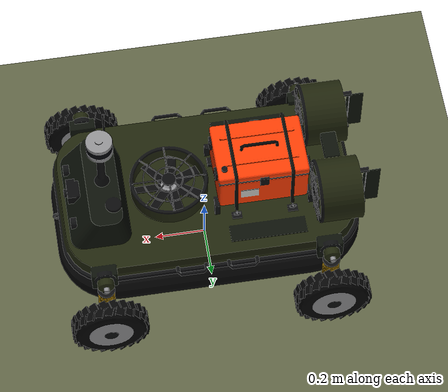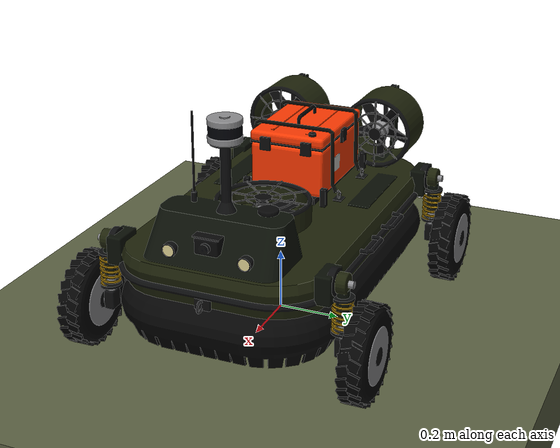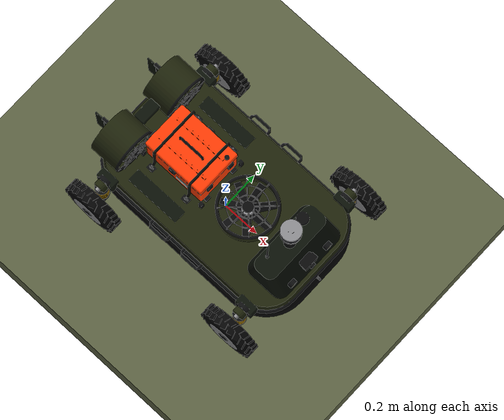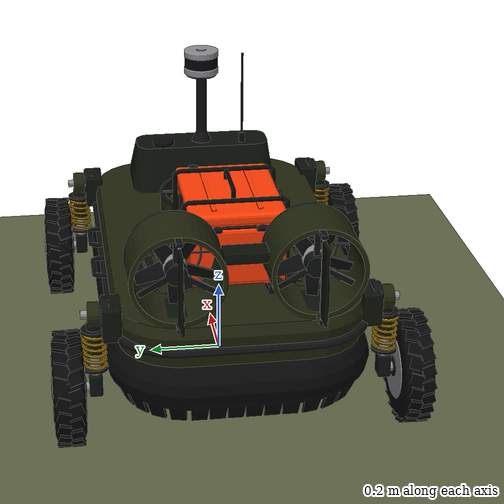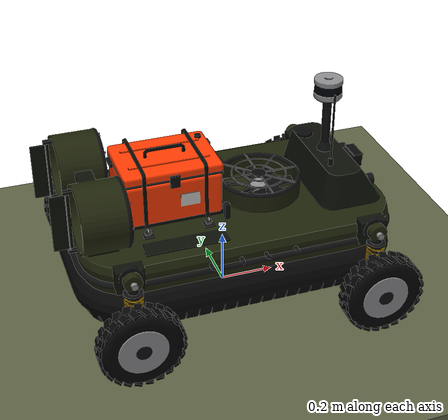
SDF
<?xml version="1.0"?>
<!-- GENERATED by hover_gazebo/scripts/gen_worlds.py -->
<sdf version="1.9">
  <world name="gap_hold_test">
    <physics name="1ms" type="dart">
      <max_step_size>0.001</max_step_size>
      <real_time_factor>1.0</real_time_factor>
      <dart><collision_detector>bullet</collision_detector></dart>
    </physics>
    <gravity>0 0 -9.81</gravity>
    <spherical_coordinates>
      <surface_model>EARTH_WGS84</surface_model>
      <latitude_deg>1.4466</latitude_deg><longitude_deg>103.7300</longitude_deg>
      <elevation>0</elevation><heading_deg>0</heading_deg>
    </spherical_coordinates>

    <plugin filename="gz-sim-physics-system" name="gz::sim::systems::Physics"/>
    <plugin filename="gz-sim-user-commands-system" name="gz::sim::systems::UserCommands"/>
    <plugin filename="gz-sim-scene-broadcaster-system" name="gz::sim::systems::SceneBroadcaster"/>
    <plugin filename="gz-sim-imu-system" name="gz::sim::systems::Imu"/>
    <plugin filename="gz-sim-navsat-system" name="gz::sim::systems::NavSat"/>
    <plugin filename="gz-sim-sensors-system" name="gz::sim::systems::Sensors">
      <render_engine>ogre2</render_engine>
    </plugin>
    <plugin filename="tidal_vehicle_plugins" name="hover::TerrainZones">
      <ground_height>0.0</ground_height>
    </plugin>
    <plugin filename="tidal_vehicle_plugins" name="hover::ScriptedCommands">
      <command><time>0.5</time><topic>/model/hovercraft/hover_enabled</topic><type>gz.msgs.Boolean</type><data>data: true</data></command>
      <command><time>2.0</time><topic>/model/hovercraft/legs_cmd</topic><type>gz.msgs.Double</type><data>data: 1.5708</data></command>
    </plugin>

    <scene><ambient>0.5 0.5 0.5 1</ambient><background>0.7 0.8 0.9 1</background><grid>false</grid></scene>
    <light type="directional" name="sun">
      <cast_shadows>true</cast_shadows><pose>0 0 10 0 0 0</pose>
      <diffuse>0.9 0.9 0.85 1</diffuse><specular>0.2 0.2 0.2 1</specular>
      <direction>-0.4 0.3 -0.9</direction>
    </light>

    <model name="ground">
      <static>true</static>
      <pose>0.0 0.0 -0.15 0 0 0</pose>
      <link name="link">
        <collision name="c">
          <geometry><box><size>40 40 0.3</size></box></geometry>
          <surface><friction><ode><mu>1.0</mu><mu2>1.0</mu2></ode></friction></surface>
        </collision>
        <visual name="v">
          <geometry><box><size>40 40 0.3</size></box></geometry>
          <material><ambient>0.36 0.38 0.26 1</ambient><diffuse>0.36 0.38 0.26 1</diffuse>
            <specular>0.05 0.05 0.05 1</specular></material>
        </visual>
      </link>
    </model>
    <include>
      <uri>model://hovercraft</uri>
      <name>hovercraft</name>
      <pose>0 0 0.002 0 0 0.0</pose>
    </include>
  </world>
</sdf>

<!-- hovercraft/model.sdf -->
<!-- GENERATED by tidal_vehicle_description/scripts/gen_description.py from link_frames.json. Do not edit by hand. -->
<!-- Model frame: ground plane under hull centre; vehicle standing on its wheels. -->
<!-- Total mass 25.00 kg; hull CoM offset 0.0891683 0 -0.03 (vehicle CoM over cushion centre). -->
<sdf version="1.9">
  <model name="hovercraft">
    <self_collide>false</self_collide>

    <link name="base_link">
      <pose>0 0 0.3 0 0 0</pose>
      <inertial>
        <pose>0.0891683 0 -0.03 0 0 0</pose>
        <mass>10.52</mass>
        <inertia><ixx>0.372057</ixx><ixy>0</ixy><ixz>0</ixz>
                 <iyy>1.09583</iyy><iyz>0</iyz><izz>1.39776</izz></inertia>
      </inertial>
      <visual name="visual">
        <geometry><mesh><uri>model://hovercraft/meshes/hull.dae</uri></mesh></geometry>
      </visual>
      <collision name="collision">
        <pose>0 0 -0.005 0 0 0</pose>
        <geometry><box><size>1.15 0.66 0.15</size></box></geometry>
        <surface><friction><ode><mu>0.3</mu><mu2>0.3</mu2></ode></friction></surface>
      </collision>
      <sensor name="imu" type="imu"><pose>0 0 0 0 0 0</pose><gz_frame_id>imu_link</gz_frame_id>
        <always_on>1</always_on><update_rate>50</update_rate><topic>__default__</topic>
      </sensor>
      <sensor name="navsat" type="navsat"><pose>0.37 0.12 0.216 0 0 0</pose><gz_frame_id>base_link</gz_frame_id>
        <always_on>1</always_on><update_rate>10</update_rate>
      </sensor>
      <sensor name="ranger_fl" type="gpu_lidar"><pose>0.42 0.2 -0.1 0 1.5708 0</pose><gz_frame_id>base_link</gz_frame_id>
        <always_on>1</always_on><update_rate>50</update_rate>
        <!-- 5 rays over +/-3 deg (a narrow ToF beam). A single-sample gpu_lidar
             returns wrong ranges in gz-sensors 8, so don't use samples = 1. -->
        <lidar><scan><horizontal><samples>5</samples><resolution>1</resolution>
          <min_angle>-0.05</min_angle><max_angle>0.05</max_angle></horizontal></scan>
          <range><min>0.01</min><max>2.0</max><resolution>0.001</resolution></range></lidar>
      </sensor>
      <sensor name="ranger_fr" type="gpu_lidar"><pose>0.42 -0.2 -0.1 0 1.5708 0</pose><gz_frame_id>base_link</gz_frame_id>
        <always_on>1</always_on><update_rate>50</update_rate>
        <!-- 5 rays over +/-3 deg (a narrow ToF beam). A single-sample gpu_lidar
             returns wrong ranges in gz-sensors 8, so don't use samples = 1. -->
        <lidar><scan><horizontal><samples>5</samples><resolution>1</resolution>
          <min_angle>-0.05</min_angle><max_angle>0.05</max_angle></horizontal></scan>
          <range><min>0.01</min><max>2.0</max><resolution>0.001</resolution></range></lidar>
      </sensor>
      <sensor name="ranger_rl" type="gpu_lidar"><pose>-0.42 0.2 -0.1 0 1.5708 0</pose><gz_frame_id>base_link</gz_frame_id>
        <always_on>1</always_on><update_rate>50</update_rate>
        <!-- 5 rays over +/-3 deg (a narrow ToF beam). A single-sample gpu_lidar
             returns wrong ranges in gz-sensors 8, so don't use samples = 1. -->
        <lidar><scan><horizontal><samples>5</samples><resolution>1</resolution>
          <min_angle>-0.05</min_angle><max_angle>0.05</max_angle></horizontal></scan>
          <range><min>0.01</min><max>2.0</max><resolution>0.001</resolution></range></lidar>
      </sensor>
      <sensor name="ranger_rr" type="gpu_lidar"><pose>-0.42 -0.2 -0.1 0 1.5708 0</pose><gz_frame_id>base_link</gz_frame_id>
        <always_on>1</always_on><update_rate>50</update_rate>
        <!-- 5 rays over +/-3 deg (a narrow ToF beam). A single-sample gpu_lidar
             returns wrong ranges in gz-sensors 8, so don't use samples = 1. -->
        <lidar><scan><horizontal><samples>5</samples><resolution>1</resolution>
          <min_angle>-0.05</min_angle><max_angle>0.05</max_angle></horizontal></scan>
          <range><min>0.01</min><max>2.0</max><resolution>0.001</resolution></range></lidar>
      </sensor>
    </link>
    <link name="skirt">
      <pose>0 0 0.19 0 0 0</pose>
      <inertial>
        <pose>0 0 0.0125 0 0 0</pose>
        <mass>1.5</mass>
        <inertia><ixx>0.0626281</ixx><ixy>0</ixy><ixz>0</ixz>
                 <iyy>0.181378</iyy><iyz>0</iyz><izz>0.24125</izz></inertia>
      </inertial>
      <visual name="visual">
        <geometry><mesh><uri>model://hovercraft/meshes/skirt.dae</uri></mesh></geometry>
      </visual>
      <collision name="collision">
        <pose>0 0 0.0125 0 0 0</pose>
        <geometry><box><size>1.2 0.7 0.105</size></box></geometry>
        <surface><friction><ode><mu>0.2</mu><mu2>0.2</mu2></ode></friction></surface>
      </collision>
    </link>
    <link name="lift_fan">
      <pose>0.14 0 0.39 0 0 0</pose>
      <inertial>
        <pose>0 0 0 0 0 0</pose>
        <mass>0.8</mass>
        <inertia><ixx>0.003705</ixx><ixy>0</ixy><ixz>0</ixz>
                 <iyy>0.003705</iyy><iyz>0</iyz><izz>0.00729</izz></inertia>
      </inertial>
      <visual name="visual">
        <geometry><mesh><uri>model://hovercraft/meshes/lift_fan.dae</uri></mesh></geometry>
      </visual>
    </link>
    <link name="thrust_fan_left">
      <pose>-0.475 0.175 0.5 0 0 0</pose>
      <inertial>
        <pose>0 0 0 0 0 0</pose>
        <mass>0.5</mass>
        <inertia><ixx>0.00275625</ixx><ixy>0</ixy><ixz>0</ixz>
                 <iyy>0.00141562</iyy><iyz>0</iyz><izz>0.00141562</izz></inertia>
      </inertial>
      <visual name="visual">
        <geometry><mesh><uri>model://hovercraft/meshes/thrust_fan_left.dae</uri></mesh></geometry>
      </visual>
    </link>
    <link name="thrust_fan_right">
      <pose>-0.475 -0.175 0.5 0 0 0</pose>
      <inertial>
        <pose>0 0 0 0 0 0</pose>
        <mass>0.5</mass>
        <inertia><ixx>0.00275625</ixx><ixy>0</ixy><ixz>0</ixz>
                 <iyy>0.00141562</iyy><iyz>0</iyz><izz>0.00141562</izz></inertia>
      </inertial>
      <visual name="visual">
        <geometry><mesh><uri>model://hovercraft/meshes/thrust_fan_right.dae</uri></mesh></geometry>
      </visual>
    </link>
    <link name="rudder_left">
      <pose>-0.6 0.175 0.5 0 0 0</pose>
      <inertial>
        <pose>-0.0215 0 0 0 0 0</pose>
        <mass>0.1</mass>
        <inertia><ixx>0.000368033</ixx><ixy>0</ixy><ixz>0</ixz>
                 <iyy>0.000404908</iyy><iyz>0</iyz><izz>3.79417e-05</izz></inertia>
      </inertial>
      <visual name="visual">
        <geometry><mesh><uri>model://hovercraft/meshes/rudder_left.dae</uri></mesh></geometry>
      </visual>
    </link>
    <link name="rudder_right">
      <pose>-0.6 -0.175 0.5 0 0 0</pose>
      <inertial>
        <pose>-0.0215 0 0 0 0 0</pose>
        <mass>0.1</mass>
        <inertia><ixx>0.000368033</ixx><ixy>0</ixy><ixz>0</ixz>
                 <iyy>0.000404908</iyy><iyz>0</iyz><izz>3.79417e-05</izz></inertia>
      </inertial>
      <visual name="visual">
        <geometry><mesh><uri>model://hovercraft/meshes/rudder_right.dae</uri></mesh></geometry>
      </visual>
    </link>
    <link name="wheel_leg_fl">
      <pose>0.44 0.38 0.36 0 0 0</pose>
      <inertial>
        <pose>0 0 -0.0675 0 0 0</pose>
        <mass>0.4</mass>
        <inertia><ixx>0.000336933</ixx><ixy>0</ixy><ixz>0</ixz>
                 <iyy>0.000336933</iyy><iyz>0</iyz><izz>7.22e-05</izz></inertia>
      </inertial>
      <visual name="visual">
        <geometry><mesh><uri>model://hovercraft/meshes/wheel_leg_fl.dae</uri></mesh></geometry>
      </visual>
      <collision name="collision">
        <pose>0 0 -0.0675 0 0 0</pose>
        <geometry><cylinder><radius>0.019</radius><length>0.095</length></cylinder></geometry>
        <surface><friction><ode><mu>0.5</mu><mu2>0.5</mu2></ode></friction></surface>
      </collision>
    </link>
    <link name="wheel_leg_fr">
      <pose>0.44 -0.38 0.36 0 0 0</pose>
      <inertial>
        <pose>0 0 -0.0675 0 0 0</pose>
        <mass>0.4</mass>
        <inertia><ixx>0.000336933</ixx><ixy>0</ixy><ixz>0</ixz>
                 <iyy>0.000336933</iyy><iyz>0</iyz><izz>7.22e-05</izz></inertia>
      </inertial>
      <visual name="visual">
        <geometry><mesh><uri>model://hovercraft/meshes/wheel_leg_fr.dae</uri></mesh></geometry>
      </visual>
      <collision name="collision">
        <pose>0 0 -0.0675 0 0 0</pose>
        <geometry><cylinder><radius>0.019</radius><length>0.095</length></cylinder></geometry>
        <surface><friction><ode><mu>0.5</mu><mu2>0.5</mu2></ode></friction></surface>
      </collision>
    </link>
    <link name="wheel_leg_rl">
      <pose>-0.44 0.38 0.36 0 0 0</pose>
      <inertial>
        <pose>0 0 -0.0675 0 0 0</pose>
        <mass>0.4</mass>
        <inertia><ixx>0.000336933</ixx><ixy>0</ixy><ixz>0</ixz>
                 <iyy>0.000336933</iyy><iyz>0</iyz><izz>7.22e-05</izz></inertia>
      </inertial>
      <visual name="visual">
        <geometry><mesh><uri>model://hovercraft/meshes/wheel_leg_rl.dae</uri></mesh></geometry>
      </visual>
      <collision name="collision">
        <pose>0 0 -0.0675 0 0 0</pose>
        <geometry><cylinder><radius>0.019</radius><length>0.095</length></cylinder></geometry>
        <surface><friction><ode><mu>0.5</mu><mu2>0.5</mu2></ode></friction></surface>
      </collision>
    </link>
    <link name="wheel_leg_rr">
      <pose>-0.44 -0.38 0.36 0 0 0</pose>
      <inertial>
        <pose>0 0 -0.0675 0 0 0</pose>
        <mass>0.4</mass>
        <inertia><ixx>0.000336933</ixx><ixy>0</ixy><ixz>0</ixz>
                 <iyy>0.000336933</iyy><iyz>0</iyz><izz>7.22e-05</izz></inertia>
      </inertial>
      <visual name="visual">
        <geometry><mesh><uri>model://hovercraft/meshes/wheel_leg_rr.dae</uri></mesh></geometry>
      </visual>
      <collision name="collision">
        <pose>0 0 -0.0675 0 0 0</pose>
        <geometry><cylinder><radius>0.019</radius><length>0.095</length></cylinder></geometry>
        <surface><friction><ode><mu>0.5</mu><mu2>0.5</mu2></ode></friction></surface>
      </collision>
    </link>
    <link name="wheel_shock_fl">
      <pose>0.44 0.38 0.15 0 0 0</pose>
      <inertial>
        <pose>0 0 0.08 0 0 0</pose>
        <mass>0.2</mass>
        <inertia><ixx>0.000436467</ixx><ixy>0</ixy><ixz>0</ixz>
                 <iyy>0.000436467</iyy><iyz>0</iyz><izz>1.96e-05</izz></inertia>
      </inertial>
      <visual name="visual">
        <geometry><mesh><uri>model://hovercraft/meshes/wheel_shock_fl.dae</uri></mesh></geometry>
      </visual>
      <collision name="collision">
        <pose>0 0 0.08 0 0 0</pose>
        <geometry><cylinder><radius>0.014</radius><length>0.16</length></cylinder></geometry>
        <surface><friction><ode><mu>0.5</mu><mu2>0.5</mu2></ode></friction></surface>
      </collision>
    </link>
    <link name="wheel_shock_fr">
      <pose>0.44 -0.38 0.15 0 0 0</pose>
      <inertial>
        <pose>0 0 0.08 0 0 0</pose>
        <mass>0.2</mass>
        <inertia><ixx>0.000436467</ixx><ixy>0</ixy><ixz>0</ixz>
                 <iyy>0.000436467</iyy><iyz>0</iyz><izz>1.96e-05</izz></inertia>
      </inertial>
      <visual name="visual">
        <geometry><mesh><uri>model://hovercraft/meshes/wheel_shock_fr.dae</uri></mesh></geometry>
      </visual>
      <collision name="collision">
        <pose>0 0 0.08 0 0 0</pose>
        <geometry><cylinder><radius>0.014</radius><length>0.16</length></cylinder></geometry>
        <surface><friction><ode><mu>0.5</mu><mu2>0.5</mu2></ode></friction></surface>
      </collision>
    </link>
    <link name="wheel_shock_rl">
      <pose>-0.44 0.38 0.15 0 0 0</pose>
      <inertial>
        <pose>0 0 0.08 0 0 0</pose>
        <mass>0.2</mass>
        <inertia><ixx>0.000436467</ixx><ixy>0</ixy><ixz>0</ixz>
                 <iyy>0.000436467</iyy><iyz>0</iyz><izz>1.96e-05</izz></inertia>
      </inertial>
      <visual name="visual">
        <geometry><mesh><uri>model://hovercraft/meshes/wheel_shock_rl.dae</uri></mesh></geometry>
      </visual>
      <collision name="collision">
        <pose>0 0 0.08 0 0 0</pose>
        <geometry><cylinder><radius>0.014</radius><length>0.16</length></cylinder></geometry>
        <surface><friction><ode><mu>0.5</mu><mu2>0.5</mu2></ode></friction></surface>
      </collision>
    </link>
    <link name="wheel_shock_rr">
      <pose>-0.44 -0.38 0.15 0 0 0</pose>
      <inertial>
        <pose>0 0 0.08 0 0 0</pose>
        <mass>0.2</mass>
        <inertia><ixx>0.000436467</ixx><ixy>0</ixy><ixz>0</ixz>
                 <iyy>0.000436467</iyy><iyz>0</iyz><izz>1.96e-05</izz></inertia>
      </inertial>
      <visual name="visual">
        <geometry><mesh><uri>model://hovercraft/meshes/wheel_shock_rr.dae</uri></mesh></geometry>
      </visual>
      <collision name="collision">
        <pose>0 0 0.08 0 0 0</pose>
        <geometry><cylinder><radius>0.014</radius><length>0.16</length></cylinder></geometry>
        <surface><friction><ode><mu>0.5</mu><mu2>0.5</mu2></ode></friction></surface>
      </collision>
    </link>
    <link name="wheel_fl">
      <pose>0.44 0.45 0.15 0 0 0</pose>
      <inertial>
        <pose>0 0 0 0 0 0</pose>
        <mass>0.9</mass>
        <inertia><ixx>0.0055425</ixx><ixy>0</ixy><ixz>0</ixz>
                 <iyy>0.010125</iyy><iyz>0</iyz><izz>0.0055425</izz></inertia>
      </inertial>
      <visual name="visual">
        <geometry><mesh><uri>model://hovercraft/meshes/wheel_fl.dae</uri></mesh></geometry>
      </visual>
      <collision name="collision">
        <pose>0 0 0 1.5708 0 0</pose>
        <geometry><cylinder><radius>0.15</radius><length>0.08</length></cylinder></geometry>
        <surface><friction><ode><mu>1.0</mu><mu2>1.0</mu2></ode></friction></surface>
      </collision>
    </link>
    <link name="wheel_fr">
      <pose>0.44 -0.45 0.15 0 0 0</pose>
      <inertial>
        <pose>0 0 0 0 0 0</pose>
        <mass>0.9</mass>
        <inertia><ixx>0.0055425</ixx><ixy>0</ixy><ixz>0</ixz>
                 <iyy>0.010125</iyy><iyz>0</iyz><izz>0.0055425</izz></inertia>
      </inertial>
      <visual name="visual">
        <geometry><mesh><uri>model://hovercraft/meshes/wheel_fr.dae</uri></mesh></geometry>
      </visual>
      <collision name="collision">
        <pose>0 0 0 1.5708 0 0</pose>
        <geometry><cylinder><radius>0.15</radius><length>0.08</length></cylinder></geometry>
        <surface><friction><ode><mu>1.0</mu><mu2>1.0</mu2></ode></friction></surface>
      </collision>
    </link>
    <link name="wheel_rl">
      <pose>-0.44 0.45 0.15 0 0 0</pose>
      <inertial>
        <pose>0 0 0 0 0 0</pose>
        <mass>0.9</mass>
        <inertia><ixx>0.0055425</ixx><ixy>0</ixy><ixz>0</ixz>
                 <iyy>0.010125</iyy><iyz>0</iyz><izz>0.0055425</izz></inertia>
      </inertial>
      <visual name="visual">
        <geometry><mesh><uri>model://hovercraft/meshes/wheel_rl.dae</uri></mesh></geometry>
      </visual>
      <collision name="collision">
        <pose>0 0 0 1.5708 0 0</pose>
        <geometry><cylinder><radius>0.15</radius><length>0.08</length></cylinder></geometry>
        <surface><friction><ode><mu>1.0</mu><mu2>1.0</mu2></ode></friction></surface>
      </collision>
    </link>
    <link name="wheel_rr">
      <pose>-0.44 -0.45 0.15 0 0 0</pose>
      <inertial>
        <pose>0 0 0 0 0 0</pose>
        <mass>0.9</mass>
        <inertia><ixx>0.0055425</ixx><ixy>0</ixy><ixz>0</ixz>
                 <iyy>0.010125</iyy><iyz>0</iyz><izz>0.0055425</izz></inertia>
      </inertial>
      <visual name="visual">
        <geometry><mesh><uri>model://hovercraft/meshes/wheel_rr.dae</uri></mesh></geometry>
      </visual>
      <collision name="collision">
        <pose>0 0 0 1.5708 0 0</pose>
        <geometry><cylinder><radius>0.15</radius><length>0.08</length></cylinder></geometry>
        <surface><friction><ode><mu>1.0</mu><mu2>1.0</mu2></ode></friction></surface>
      </collision>
    </link>
    <link name="payload_box">
      <pose>-0.215 0 0.39 0 0 0</pose>
      <inertial>
        <pose>0 0 0.1 0 0 0</pose>
        <mass>4.0</mass>
        <inertia><ixx>0.0341667</ixx><ixy>0</ixy><ixz>0</ixz>
                 <iyy>0.0541667</iyy><iyz>0</iyz><izz>0.0616667</izz></inertia>
      </inertial>
      <visual name="visual">
        <geometry><mesh><uri>model://hovercraft/meshes/payload_box.dae</uri></mesh></geometry>
      </visual>
      <collision name="collision">
        <pose>0 0 0.1 0 0 0</pose>
        <geometry><box><size>0.35 0.25 0.2</size></box></geometry>
        <surface><friction><ode><mu>0.5</mu><mu2>0.5</mu2></ode></friction></surface>
      </collision>
    </link>
    <link name="lidar_link">
      <pose>0.4 0 0.75 0 0 0</pose>
      <inertial>
        <pose>0 0 0 0 0 0</pose>
        <mass>0.83</mass>
        <inertia><ixx>0.00090592</ixx><ixy>0</ixy><ixz>0</ixz>
                 <iyy>0.00090592</iyy><iyz>0</iyz><izz>0.00110068</izz></inertia>
      </inertial>
      <visual name="visual">
        <geometry><mesh><uri>model://hovercraft/meshes/lidar.dae</uri></mesh></geometry>
      </visual>
      <collision name="collision">
        <pose>0 0 0 0 0 0</pose>
        <geometry><cylinder><radius>0.0515</radius><length>0.0717</length></cylinder></geometry>
        <surface><friction><ode><mu>0.5</mu><mu2>0.5</mu2></ode></friction></surface>
      </collision>
      <sensor name="lidar_3d" type="gpu_lidar"><pose>0 0 0 0 0 0</pose><gz_frame_id>lidar_link</gz_frame_id>
        <always_on>1</always_on><update_rate>10</update_rate><visualize>1</visualize>
        <lidar>
          <scan>
            <horizontal><samples>900</samples><resolution>1</resolution>
              <min_angle>-3.14159</min_angle><max_angle>3.14159</max_angle></horizontal>
            <vertical><samples>16</samples><resolution>1</resolution>
              <min_angle>-0.26180</min_angle>
              <max_angle>0.26180</max_angle></vertical>
          </scan>
          <range><min>0.3</min><max>30.0</max><resolution>0.01</resolution></range>
          <noise><type>gaussian</type><mean>0</mean><stddev>0.01</stddev></noise>
        </lidar>
      </sensor>
    </link>
    <link name="camera_link">
      <pose>0.552 0 0.44 0 0 0</pose>
      <inertial>
        <pose>-0.037 0 0 0 0 0</pose>
        <mass>0.15</mass>
        <inertia><ixx>0.000101562</ixx><ixy>0</ixy><ixz>0</ixz>
                 <iyy>6.25e-05</iyy><iyz>0</iyz><izz>0.000101562</izz></inertia>
      </inertial>
      <visual name="visual">
        <geometry><mesh><uri>model://hovercraft/meshes/camera.dae</uri></mesh></geometry>
      </visual>
      <collision name="collision">
        <pose>-0.037 0 0 0 0 0</pose>
        <geometry><box><size>0.05 0.075 0.05</size></box></geometry>
        <surface><friction><ode><mu>0.5</mu><mu2>0.5</mu2></ode></friction></surface>
      </collision>
      <sensor name="front_camera" type="camera"><pose>0 0 0 0 0 0</pose><gz_frame_id>camera_link</gz_frame_id>
        <always_on>1</always_on><update_rate>15</update_rate>
        <camera><horizontal_fov>1.40</horizontal_fov>
          <image><width>640</width><height>480</height><format>R8G8B8</format></image>
          <clip><near>0.05</near><far>60</far></clip></camera>
      </sensor>
    </link>

    <joint name="skirt_joint" type="fixed">
      <parent>base_link</parent>
      <child>skirt</child>
    </joint>
    <joint name="lift_fan_joint" type="revolute">
      <parent>base_link</parent>
      <child>lift_fan</child>
      <axis>
        <xyz>0 0 1</xyz>
        <limit><lower>-1e16</lower><upper>1e16</upper><effort>5</effort></limit>
        <dynamics><damping>0.01</damping></dynamics>
      </axis>
    </joint>
    <joint name="thrust_fan_left_joint" type="revolute">
      <parent>base_link</parent>
      <child>thrust_fan_left</child>
      <axis>
        <xyz>1 0 0</xyz>
        <limit><lower>-1e16</lower><upper>1e16</upper><effort>5</effort></limit>
        <dynamics><damping>0.01</damping></dynamics>
      </axis>
    </joint>
    <joint name="thrust_fan_right_joint" type="revolute">
      <parent>base_link</parent>
      <child>thrust_fan_right</child>
      <axis>
        <xyz>1 0 0</xyz>
        <limit><lower>-1e16</lower><upper>1e16</upper><effort>5</effort></limit>
        <dynamics><damping>0.01</damping></dynamics>
      </axis>
    </joint>
    <joint name="rudder_left_joint" type="revolute">
      <parent>base_link</parent>
      <child>rudder_left</child>
      <axis>
        <xyz>0 0 1</xyz>
        <limit><lower>-0.5236</lower><upper>0.5236</upper><effort>5</effort></limit>
        <dynamics><damping>0.5</damping></dynamics>
      </axis>
    </joint>
    <joint name="rudder_right_joint" type="revolute">
      <parent>base_link</parent>
      <child>rudder_right</child>
      <axis>
        <xyz>0 0 1</xyz>
        <limit><lower>-0.5236</lower><upper>0.5236</upper><effort>5</effort></limit>
        <dynamics><damping>0.5</damping></dynamics>
      </axis>
    </joint>
    <joint name="wheel_leg_fl_joint" type="revolute">
      <parent>base_link</parent>
      <child>wheel_leg_fl</child>
      <axis>
        <xyz>0 1 0</xyz>
        <limit><lower>0.0</lower><upper>1.5708</upper><effort>80</effort></limit>
        <dynamics><damping>0.5</damping></dynamics>
      </axis>
    </joint>
    <joint name="wheel_leg_fr_joint" type="revolute">
      <parent>base_link</parent>
      <child>wheel_leg_fr</child>
      <axis>
        <xyz>0 1 0</xyz>
        <limit><lower>0.0</lower><upper>1.5708</upper><effort>80</effort></limit>
        <dynamics><damping>0.5</damping></dynamics>
      </axis>
    </joint>
    <joint name="wheel_leg_rl_joint" type="revolute">
      <parent>base_link</parent>
      <child>wheel_leg_rl</child>
      <axis>
        <xyz>0 -1 0</xyz>
        <limit><lower>0.0</lower><upper>1.5708</upper><effort>80</effort></limit>
        <dynamics><damping>0.5</damping></dynamics>
      </axis>
    </joint>
    <joint name="wheel_leg_rr_joint" type="revolute">
      <parent>base_link</parent>
      <child>wheel_leg_rr</child>
      <axis>
        <xyz>0 -1 0</xyz>
        <limit><lower>0.0</lower><upper>1.5708</upper><effort>80</effort></limit>
        <dynamics><damping>0.5</damping></dynamics>
      </axis>
    </joint>
    <joint name="wheel_shock_fl_joint" type="prismatic">
      <parent>wheel_leg_fl</parent>
      <child>wheel_shock_fl</child>
      <axis>
        <xyz>0 0 1</xyz>
        <limit><lower>-0.03</lower><upper>0.05</upper><effort>600</effort></limit>
        <dynamics><damping>0.5</damping></dynamics>
      </axis>
    </joint>
    <joint name="wheel_shock_fr_joint" type="prismatic">
      <parent>wheel_leg_fr</parent>
      <child>wheel_shock_fr</child>
      <axis>
        <xyz>0 0 1</xyz>
        <limit><lower>-0.03</lower><upper>0.05</upper><effort>600</effort></limit>
        <dynamics><damping>0.5</damping></dynamics>
      </axis>
    </joint>
    <joint name="wheel_shock_rl_joint" type="prismatic">
      <parent>wheel_leg_rl</parent>
      <child>wheel_shock_rl</child>
      <axis>
        <xyz>0 0 1</xyz>
        <limit><lower>-0.03</lower><upper>0.05</upper><effort>600</effort></limit>
        <dynamics><damping>0.5</damping></dynamics>
      </axis>
    </joint>
    <joint name="wheel_shock_rr_joint" type="prismatic">
      <parent>wheel_leg_rr</parent>
      <child>wheel_shock_rr</child>
      <axis>
        <xyz>0 0 1</xyz>
        <limit><lower>-0.03</lower><upper>0.05</upper><effort>600</effort></limit>
        <dynamics><damping>0.5</damping></dynamics>
      </axis>
    </joint>
    <joint name="wheel_fl_joint" type="revolute">
      <parent>wheel_shock_fl</parent>
      <child>wheel_fl</child>
      <axis>
        <xyz>0 1 0</xyz>
        <limit><lower>-1e16</lower><upper>1e16</upper><effort>15</effort></limit>
        <dynamics><damping>0.01</damping></dynamics>
      </axis>
    </joint>
    <joint name="wheel_fr_joint" type="revolute">
      <parent>wheel_shock_fr</parent>
      <child>wheel_fr</child>
      <axis>
        <xyz>0 1 0</xyz>
        <limit><lower>-1e16</lower><upper>1e16</upper><effort>15</effort></limit>
        <dynamics><damping>0.01</damping></dynamics>
      </axis>
    </joint>
    <joint name="wheel_rl_joint" type="revolute">
      <parent>wheel_shock_rl</parent>
      <child>wheel_rl</child>
      <axis>
        <xyz>0 1 0</xyz>
        <limit><lower>-1e16</lower><upper>1e16</upper><effort>15</effort></limit>
        <dynamics><damping>0.01</damping></dynamics>
      </axis>
    </joint>
    <joint name="wheel_rr_joint" type="revolute">
      <parent>wheel_shock_rr</parent>
      <child>wheel_rr</child>
      <axis>
        <xyz>0 1 0</xyz>
        <limit><lower>-1e16</lower><upper>1e16</upper><effort>15</effort></limit>
        <dynamics><damping>0.01</damping></dynamics>
      </axis>
    </joint>
    <joint name="payload_box_joint" type="fixed">
      <parent>base_link</parent>
      <child>payload_box</child>
    </joint>
    <joint name="lidar_joint" type="fixed">
      <parent>base_link</parent>
      <child>lidar_link</child>
    </joint>
    <joint name="camera_joint" type="fixed">
      <parent>base_link</parent>
      <child>camera_link</child>
    </joint>

    <!-- Air cushion + glide drag + fan thrust + mud resistance (tidal_vehicle_simulation) -->
    <plugin filename="tidal_vehicle_plugins" name="hover::AirCushion">
      <link_name>base_link</link_name>
      <corner>0.420 0.200 -0.200</corner><corner>0.420 -0.200 -0.200</corner><corner>-0.420 0.200 -0.200</corner><corner>-0.420 -0.200 -0.200</corner>
      <target_gap>0.04</target_gap>
      <stiffness>1500</stiffness>
      <damping>130</damping>
      <max_force_factor>2.0</max_force_factor>
      <spinup_time>1.5</spinup_time>
      <glide_linear_drag>5</glide_linear_drag>
      <glide_quadratic_drag>6</glide_quadratic_drag>
      <glide_yaw_drag>4</glide_yaw_drag>
      <glide_lateral_factor>3</glide_lateral_factor>
      <max_thrust>30</max_thrust>
      <thrust_point_left>-0.475 0.175 0.2</thrust_point_left>
      <thrust_point_right>-0.475 -0.175 0.2</thrust_point_right>
      <mud_viscous_drag>150</mud_viscous_drag>
      <mud_rolling_resistance>0.25</mud_rolling_resistance>
      <vent_length>0.05</vent_length>
      <rudder_wash_coeff>0.55</rudder_wash_coeff>
      <heading_kp>40</heading_kp><heading_kd>25</heading_kd>
      <speed_kp>40</speed_kp><speed_ki>10</speed_ki><yaw_rate_kp>30</yaw_rate_kp>
      <cmd_timeout>0.5</cmd_timeout>
      <use_raycast>true</use_raycast>
      <log_file>/tmp/hover_{model}.csv</log_file>
      <log_joint>wheel_leg_fl_joint</log_joint><log_joint>wheel_leg_fr_joint</log_joint><log_joint>wheel_leg_rl_joint</log_joint><log_joint>wheel_leg_rr_joint</log_joint><log_joint>wheel_shock_fl_joint</log_joint><log_joint>wheel_shock_fr_joint</log_joint><log_joint>wheel_shock_rl_joint</log_joint><log_joint>wheel_shock_rr_joint</log_joint><log_joint>wheel_fl_joint</log_joint><log_joint>wheel_fr_joint</log_joint><log_joint>wheel_rl_joint</log_joint><log_joint>wheel_rr_joint</log_joint>
    </plugin>

    <plugin filename="gz-sim-diff-drive-system" name="gz::sim::systems::DiffDrive">
      <odom_topic>internal/wheel_odometry</odom_topic><tf_topic>internal/wheel_tf</tf_topic>
      <left_joint>wheel_fl_joint</left_joint><left_joint>wheel_rl_joint</left_joint>
      <right_joint>wheel_fr_joint</right_joint><right_joint>wheel_rr_joint</right_joint>
      <wheel_separation>0.900</wheel_separation>
      <wheel_radius>0.150</wheel_radius>
      <max_linear_velocity>2.0</max_linear_velocity>
      <max_angular_velocity>2.0</max_angular_velocity>
      <odom_publish_frequency>20</odom_publish_frequency>
    </plugin>

    <plugin filename="gz-sim-joint-position-controller-system" name="gz::sim::systems::JointPositionController">
      <joint_name>wheel_leg_fl_joint</joint_name>
      <sub_topic>legs_cmd</sub_topic>
      <use_velocity_commands>true</use_velocity_commands>
      <p_gain>4.0</p_gain><i_gain>0</i_gain><d_gain>0</d_gain>
      <cmd_max>1.2</cmd_max><cmd_min>-1.2</cmd_min>
      <initial_position>0</initial_position>
    </plugin>
    <plugin filename="gz-sim-joint-position-controller-system" name="gz::sim::systems::JointPositionController">
      <joint_name>wheel_leg_fr_joint</joint_name>
      <sub_topic>legs_cmd</sub_topic>
      <use_velocity_commands>true</use_velocity_commands>
      <p_gain>4.0</p_gain><i_gain>0</i_gain><d_gain>0</d_gain>
      <cmd_max>1.2</cmd_max><cmd_min>-1.2</cmd_min>
      <initial_position>0</initial_position>
    </plugin>
    <plugin filename="gz-sim-joint-position-controller-system" name="gz::sim::systems::JointPositionController">
      <joint_name>wheel_leg_rl_joint</joint_name>
      <sub_topic>legs_cmd</sub_topic>
      <use_velocity_commands>true</use_velocity_commands>
      <p_gain>4.0</p_gain><i_gain>0</i_gain><d_gain>0</d_gain>
      <cmd_max>1.2</cmd_max><cmd_min>-1.2</cmd_min>
      <initial_position>0</initial_position>
    </plugin>
    <plugin filename="gz-sim-joint-position-controller-system" name="gz::sim::systems::JointPositionController">
      <joint_name>wheel_leg_rr_joint</joint_name>
      <sub_topic>legs_cmd</sub_topic>
      <use_velocity_commands>true</use_velocity_commands>
      <p_gain>4.0</p_gain><i_gain>0</i_gain><d_gain>0</d_gain>
      <cmd_max>1.2</cmd_max><cmd_min>-1.2</cmd_min>
      <initial_position>0</initial_position>
    </plugin>
    <!-- Suspension spring-damper (wheel_shock_fl): k = 1700.0 N/m, c = 75.0 N s/m -->
    <plugin filename="gz-sim-joint-position-controller-system" name="gz::sim::systems::JointPositionController">
      <joint_name>wheel_shock_fl_joint</joint_name>
      <p_gain>1700.0</p_gain><i_gain>0</i_gain><d_gain>75.0</d_gain>
      <cmd_max>600</cmd_max><cmd_min>-600</cmd_min>
      <initial_position>-0.03</initial_position>
    </plugin>
    <!-- Suspension spring-damper (wheel_shock_fr): k = 1700.0 N/m, c = 75.0 N s/m -->
    <plugin filename="gz-sim-joint-position-controller-system" name="gz::sim::systems::JointPositionController">
      <joint_name>wheel_shock_fr_joint</joint_name>
      <p_gain>1700.0</p_gain><i_gain>0</i_gain><d_gain>75.0</d_gain>
      <cmd_max>600</cmd_max><cmd_min>-600</cmd_min>
      <initial_position>-0.03</initial_position>
    </plugin>
    <!-- Suspension spring-damper (wheel_shock_rl): k = 1700.0 N/m, c = 75.0 N s/m -->
    <plugin filename="gz-sim-joint-position-controller-system" name="gz::sim::systems::JointPositionController">
      <joint_name>wheel_shock_rl_joint</joint_name>
      <p_gain>1700.0</p_gain><i_gain>0</i_gain><d_gain>75.0</d_gain>
      <cmd_max>600</cmd_max><cmd_min>-600</cmd_min>
      <initial_position>-0.03</initial_position>
    </plugin>
    <!-- Suspension spring-damper (wheel_shock_rr): k = 1700.0 N/m, c = 75.0 N s/m -->
    <plugin filename="gz-sim-joint-position-controller-system" name="gz::sim::systems::JointPositionController">
      <joint_name>wheel_shock_rr_joint</joint_name>
      <p_gain>1700.0</p_gain><i_gain>0</i_gain><d_gain>75.0</d_gain>
      <cmd_max>600</cmd_max><cmd_min>-600</cmd_min>
      <initial_position>-0.03</initial_position>
    </plugin>
    <plugin filename="gz-sim-joint-position-controller-system" name="gz::sim::systems::JointPositionController">
      <joint_name>rudder_left_joint</joint_name><sub_topic>rudder_left_cmd</sub_topic>
      <p_gain>2</p_gain><d_gain>0.05</d_gain>
      <cmd_max>2</cmd_max><cmd_min>-2</cmd_min>
    </plugin>
    <plugin filename="gz-sim-joint-position-controller-system" name="gz::sim::systems::JointPositionController">
      <joint_name>rudder_right_joint</joint_name><sub_topic>rudder_right_cmd</sub_topic>
      <p_gain>2</p_gain><d_gain>0.05</d_gain>
      <cmd_max>2</cmd_max><cmd_min>-2</cmd_min>
    </plugin>
    <plugin filename="gz-sim-joint-state-publisher-system" name="gz::sim::systems::JointStatePublisher"/>

    <!-- /odom + TF (odom frame -> base_link). Ground-truth pose, valid in BOTH modes
         (wheel odometry is meaningless while hovering). Idealised: stated in docs. -->
    <plugin filename="gz-sim-odometry-publisher-system" name="gz::sim::systems::OdometryPublisher">
      <odom_frame>map</odom_frame>
      <robot_base_frame>base_link</robot_base_frame>
      <dimensions>3</dimensions>
      <odom_publish_frequency>50</odom_publish_frequency>
    </plugin>
  </model>
</sdf>
